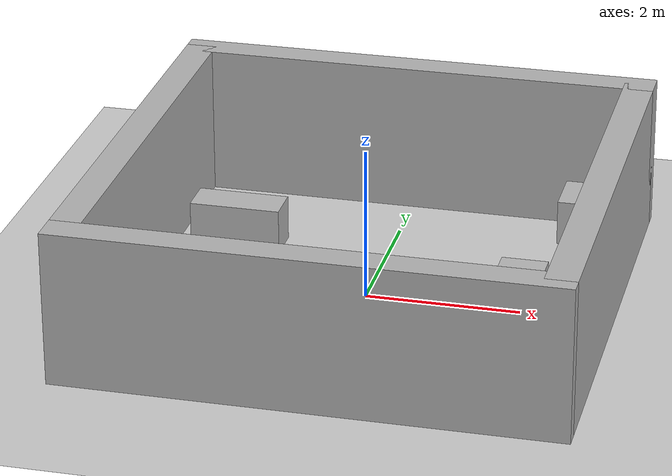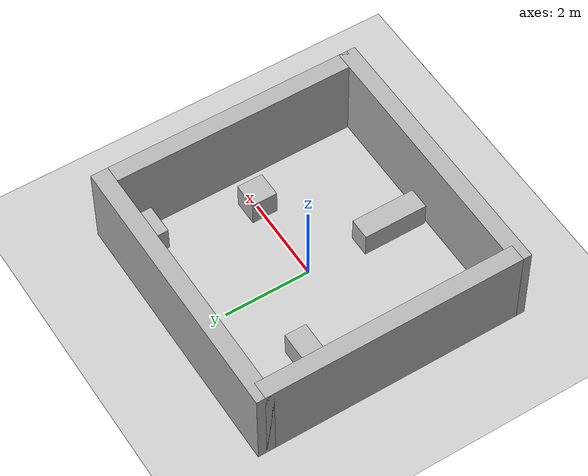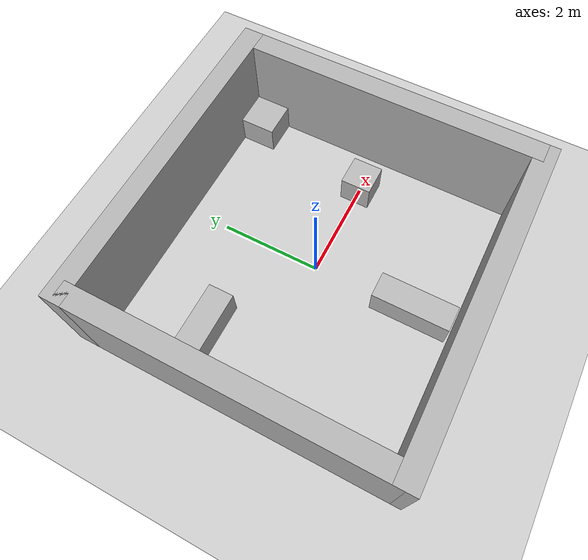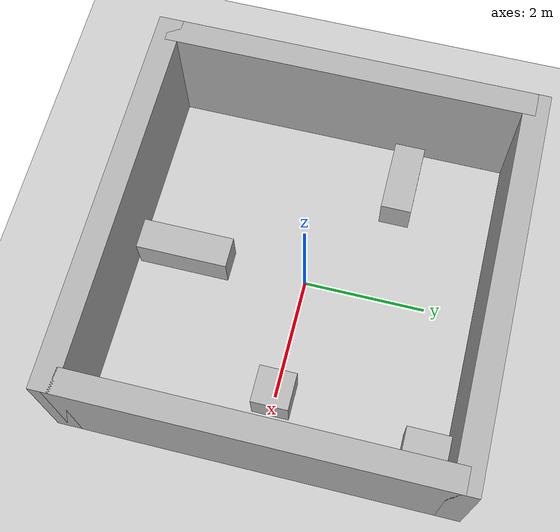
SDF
<?xml version="1.0" ?>
<sdf version="1.6">
  <world name="empty">
    <physics name="1ms" type="ignored">
      <max_step_size>0.001</max_step_size>
      <real_time_factor>1.0</real_time_factor>
    </physics>
    <plugin
      filename="gz-sim-physics-system"
      name="gz::sim::systems::Physics">
    </plugin>

<plugin
  filename="gz-sim-sensors-system"
  name="gz::sim::systems::Sensors">
  <render_engine>ogre2</render_engine>
</plugin>
    <plugin
      filename="gz-sim-user-commands-system"
      name="gz::sim::systems::UserCommands">
    </plugin>
    <plugin
      filename="gz-sim-scene-broadcaster-system"
      name="gz::sim::systems::SceneBroadcaster">
    </plugin>
    <plugin
      filename="gz-sim-contact-system"
      name="gz::sim::systems::Contact">
    </plugin>

    <light type="directional" name="sun">
      <cast_shadows>true</cast_shadows>
      <pose>0 0 10 0 0 0</pose>
      <diffuse>0.8 0.8 0.8 1</diffuse>
      <specular>0.2 0.2 0.2 1</specular>
      <attenuation>
        <range>1000</range>
        <constant>0.9</constant>
        <linear>0.01</linear>
        <quadratic>0.001</quadratic>
      </attenuation>
      <direction>-0.5 0.1 -0.9</direction>
    </light>

    <model name="ground_plane">
      <static>true</static>
      <link name="link">
        <collision name="collision">
          <geometry>
            <plane>
              <normal>0 0 1</normal>
              <size>100 100</size>
            </plane>
          </geometry>
        </collision>
        <visual name="visual">
          <geometry>
            <plane>
              <normal>0 0 1</normal>
              <size>100 100</size>
            </plane>
          </geometry>
          <material>
            <ambient>0.8 0.8 0.8 1</ambient>
            <diffuse>0.8 0.8 0.8 1</diffuse>
            <specular>0.8 0.8 0.8 1</specular>
          </material>
        </visual>
      </link>
    </model>

        <!-- ================= OBSTACLE 1 ================= -->
    <model name="box_1">
      <static>true</static>
      <pose>2 0 0.30 0 0 0</pose>

      <link name="link">
        <collision name="collision">
          <geometry>
            <box>
              <size>0.6 0.6 0.6</size>
            </box>
          </geometry>
        </collision>

        <visual name="visual">
          <geometry>
            <box>
              <size>0.6 0.6 0.6</size>
            </box>
          </geometry>
        </visual>
      </link>
    </model>

    <!-- ================= OBSTACLE 2 ================= -->
    <model name="box_2">
      <static>true</static>
      <pose>-2 1.2 0.30 0 0 0</pose>

      <link name="link">
        <collision name="collision">
          <geometry>
            <box>
              <size>1.2 0.5 0.6</size>
            </box>
          </geometry>
        </collision>

        <visual name="visual">
          <geometry>
            <box>
              <size>1.2 0.5 0.6</size>
            </box>
          </geometry>
        </visual>
      </link>
    </model>

    <!-- ================= OBSTACLE 3 ================= -->
    <model name="box_3">
      <static>true</static>
      <pose>0 -2 0.30 0 0 0</pose>

      <link name="link">
        <collision name="collision">
          <geometry>
            <box>
              <size>0.5 1.5 0.6</size>
            </box>
          </geometry>
        </collision>

        <visual name="visual">
          <geometry>
            <box>
              <size>0.5 1.5 0.6</size>
            </box>
          </geometry>
        </visual>
      </link>
    </model>

    <!-- ================= OBSTACLE 4 ================= -->
    <model name="box_4">
      <static>true</static>
      <pose>2.5 2.5 0.30 0 0 0</pose>

      <link name="link">
        <collision name="collision">
          <geometry>
            <box>
              <size>0.8 0.8 0.6</size>
            </box>
          </geometry>
        </collision>

        <visual name="visual">
          <geometry>
            <box>
              <size>0.8 0.8 0.6</size>
            </box>
          </geometry>
        </visual>
      </link>
    </model>

<!-- ================= SMALL ENCLOSING ROOM (6m x 6m) ================= -->
    <model name="enclosing_walls">
      <static>true</static>

      <!-- North Wall -->
      <link name="wall_north">
        <pose>0 3 1.0 0 0 0</pose>
        <collision name="collision">
          <geometry><box><size>6.4 0.4 2.0</size></box></geometry>
        </collision>
        <visual name="visual">
          <geometry><box><size>6.4 0.4 2.0</size></box></geometry>
          <material><ambient>0.7 0.7 0.7 1</ambient><diffuse>0.7 0.7 0.7 1</diffuse></material>
        </visual>
      </link>

      <!-- South Wall -->
      <link name="wall_south">
        <pose>0 -3 1.0 0 0 0</pose>
        <collision name="collision">
          <geometry><box><size>6.4 0.4 2.0</size></box></geometry>
        </collision>
        <visual name="visual">
          <geometry><box><size>6.4 0.4 2.0</size></box></geometry>
          <material><ambient>0.7 0.7 0.7 1</ambient><diffuse>0.7 0.7 0.7 1</diffuse></material>
        </visual>
      </link>

      <!-- East Wall -->
      <link name="wall_east">
        <pose>3 0 1.0 0 0 0</pose>
        <collision name="collision">
          <geometry><box><size>0.4 6.0 2.0</size></box></geometry>
        </collision>
        <visual name="visual">
          <geometry><box><size>0.4 6.0 2.0</size></box></geometry>
          <material><ambient>0.7 0.7 0.7 1</ambient><diffuse>0.7 0.7 0.7 1</diffuse></material>
        </visual>
      </link>

      <!-- West Wall -->
      <link name="wall_west">
        <pose>-3 0 1.0 0 0 0</pose>
        <collision name="collision">
          <geometry><box><size>0.4 6.0 2.0</size></box></geometry>
        </collision>
        <visual name="visual">
          <geometry><box><size>0.4 6.0 2.0</size></box></geometry>
          <material><ambient>0.7 0.7 0.7 1</ambient><diffuse>0.7 0.7 0.7 1</diffuse></material>
        </visual>
      </link>
    </model>

  </world>
</sdf>
